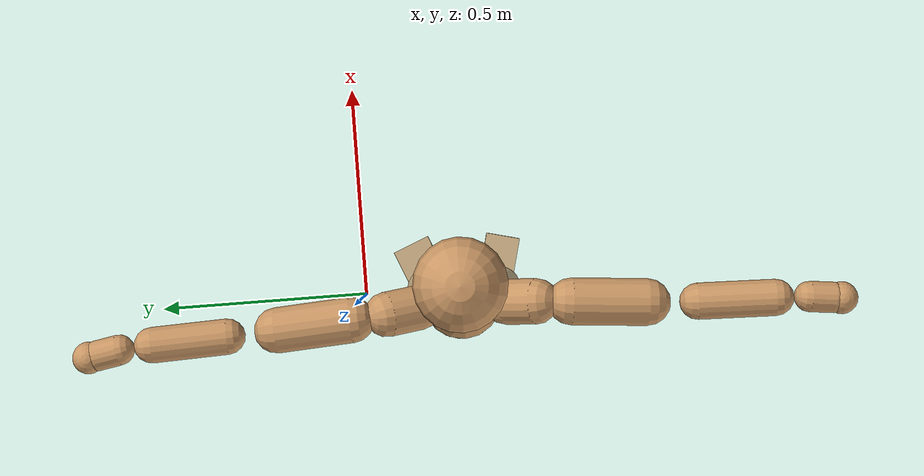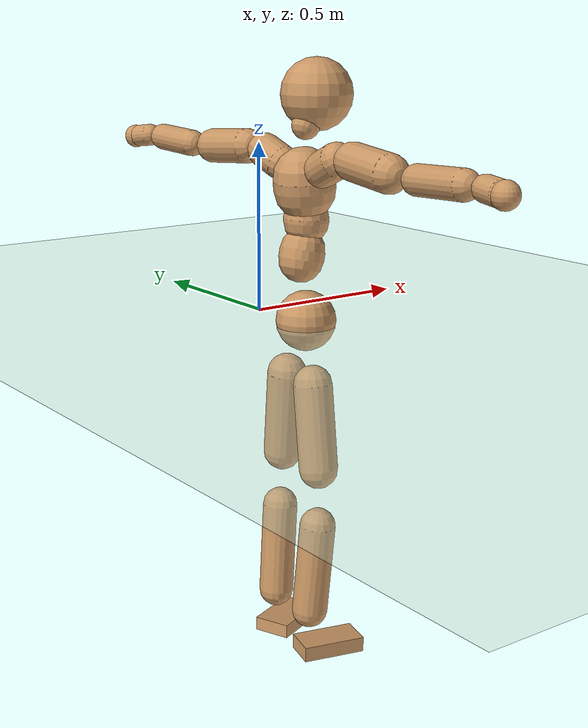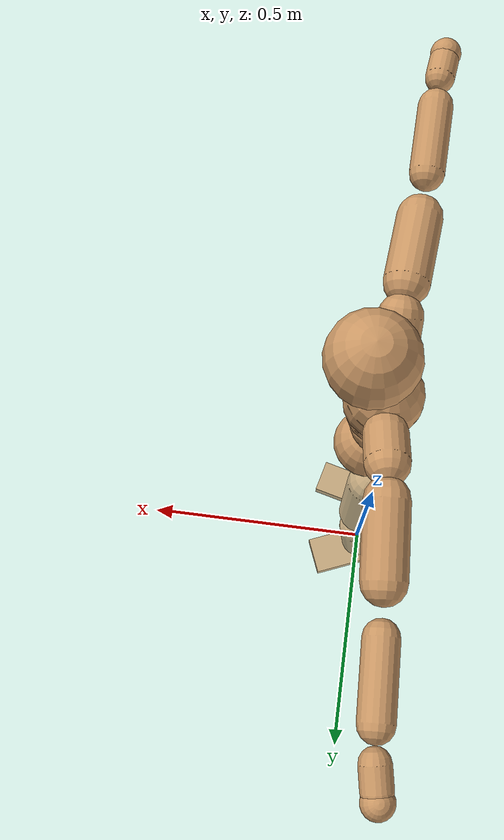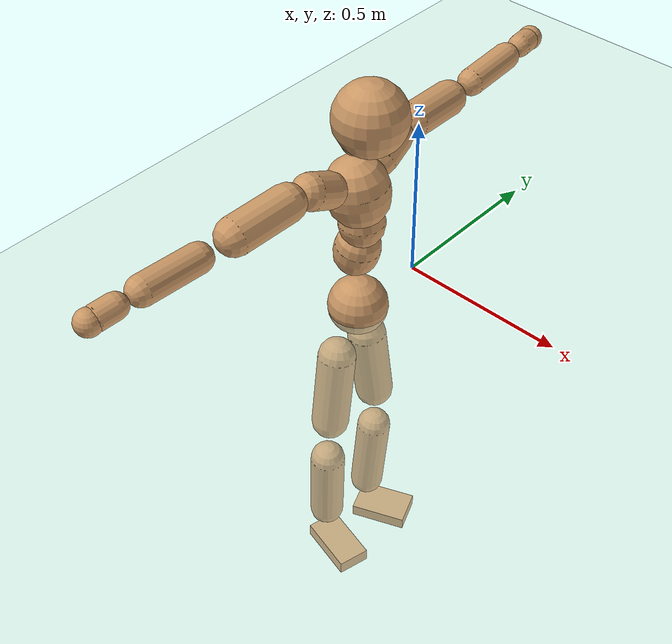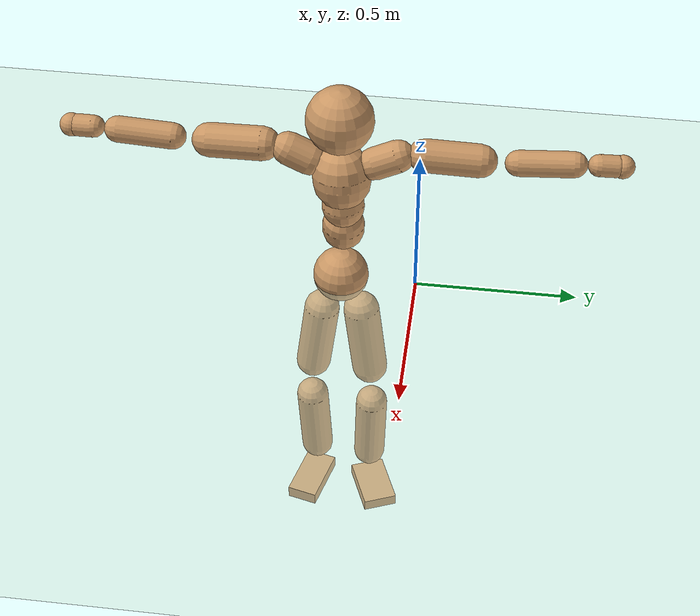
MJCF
<mujoco model="humanoid">
  <compiler coordinate="local"/>
  <default>
    <joint damping="0.0" armature="0.01" stiffness="0.0" limited="true"/>
    <geom conaffinity="1" condim="3" contype="7" margin="0.001" rgba="0.8 0.6 .4 1"/>
  </default>
  <asset>
    <texture type="skybox" builtin="gradient" rgb1=".4 .5 .6" rgb2="0 0 0" width="100" height="100"/>
    <texture builtin="flat" height="1278" mark="cross" markrgb="1 1 1" name="texgeom" random="0.01" rgb1="0.8 0.6 0.4" rgb2="0.8 0.6 0.4" type="cube" width="127"/>
    <texture builtin="checker" height="100" name="texplane" rgb1="0 0 0" rgb2="0.8 0.8 0.8" type="2d" width="100"/>
    <material name="MatPlane" reflectance="0.5" shininess="1" specular="1" texrepeat="60 60" texture="texplane"/>
    <material name="geom" texture="texgeom" texuniform="true"/>
  </asset>
  <worldbody>
    <light cutoff="100" diffuse="1 1 1" dir="-0 0 -1.3" directional="true" exponent="1" pos="0 0 1.3" specular=".1 .1 .1"/>
    <geom conaffinity="1" condim="3" name="floor" pos="0 0 0" rgba="0.8 0.9 0.8 1" size="100 100 .2" type="plane" material="MatPlane"/>
    <body name="Pelvis" pos="-0.002 -0.2356 0.0128">
      <freejoint name="Pelvis"/>
      <geom type="sphere" contype="1" conaffinity="1" density="500" size="0.0871" pos="0.0000 0.0000 0.0000" name="Pelvis"/>
      <body name="L_Hip" pos="-0.0245 0.0527 -0.082">
        <joint name="L_Hip_x" type="hinge" pos="0 0 0" axis="1 0 0" stiffness="800" damping="80" armature="0.02" range="-180.0000 180.0000"/>
        <joint name="L_Hip_y" type="hinge" pos="0 0 0" axis="0 1 0" stiffness="800" damping="80" armature="0.02" range="-180.0000 180.0000"/>
        <joint name="L_Hip_z" type="hinge" pos="0 0 0" axis="0 0 1" stiffness="800" damping="80" armature="0.02" range="-180.0000 180.0000"/>
        <geom type="capsule" contype="1" conaffinity="1" density="500" fromto="0.0023 0.0103 -0.0840 0.0094 0.0410 -0.3359" size="0.0572" name="L_Hip"/>
        <body name="L_Knee" pos="0.0117 0.0513 -0.4199">
          <joint name="L_Knee_x" type="hinge" pos="0 0 0" axis="1 0 0" stiffness="800" damping="80" armature="0.02" range="-180.0000 180.0000"/>
          <joint name="L_Knee_y" type="hinge" pos="0 0 0" axis="0 1 0" stiffness="800" damping="80" armature="0.02" range="-180.0000 180.0000"/>
          <joint name="L_Knee_z" type="hinge" pos="0 0 0" axis="0 0 1" stiffness="800" damping="80" armature="0.02" range="-180.0000 180.0000"/>
          <geom type="capsule" contype="1" conaffinity="1" density="500" fromto="-0.0068 -0.0026 -0.0905 -0.0273 -0.0104 -0.3620" size="0.0518" name="L_Knee"/>
          <body name="L_Ankle" pos="-0.0342 -0.013 -0.4525">
            <joint name="L_Ankle_x" type="hinge" pos="0 0 0" axis="1 0 0" stiffness="800" damping="80" armature="0.02" range="-180.0000 180.0000"/>
            <joint name="L_Ankle_y" type="hinge" pos="0 0 0" axis="0 1 0" stiffness="800" damping="80" armature="0.02" range="-180.0000 180.0000"/>
            <joint name="L_Ankle_z" type="hinge" pos="0 0 0" axis="0 0 1" stiffness="800" damping="80" armature="0.02" range="-180.0000 180.0000"/>
            <geom type="box" contype="1" conaffinity="1" density="500" pos="0.0620 0.0253 -0.0321" size="0.0876 0.0556 0.0205" quat="0.9813 0.0000 0.0000 0.1925" name="L_Ankle"/>
            <body name="L_Toe" pos="0.124 0.0506 -0.0641">
              <joint name="L_Toe_x" type="hinge" pos="0 0 0" axis="1 0 0" stiffness="500" damping="50" armature="0.02" range="-180.0000 180.0000"/>
              <joint name="L_Toe_y" type="hinge" pos="0 0 0" axis="0 1 0" stiffness="500" damping="50" armature="0.02" range="-180.0000 180.0000"/>
              <joint name="L_Toe_z" type="hinge" pos="0 0 0" axis="0 0 1" stiffness="500" damping="50" armature="0.02" range="-180.0000 180.0000"/>
              <geom type="box" contype="1" conaffinity="1" density="500" pos="0.0000 0.0000 0.0341" size="0.0011 0.0026 0.0011" quat="0.9805 0.0000 0.0000 0.1964" name="L_Toe"/>
            </body>
          </body>
        </body>
      </body>
      <body name="R_Hip" pos="-0.0223 -0.0539 -0.09">
        <joint name="R_Hip_x" type="hinge" pos="0 0 0" axis="1 0 0" stiffness="800" damping="80" armature="0.02" range="-180.0000 180.0000"/>
        <joint name="R_Hip_y" type="hinge" pos="0 0 0" axis="0 1 0" stiffness="800" damping="80" armature="0.02" range="-180.0000 180.0000"/>
        <joint name="R_Hip_z" type="hinge" pos="0 0 0" axis="0 0 1" stiffness="800" damping="80" armature="0.02" range="-180.0000 180.0000"/>
        <geom type="capsule" contype="1" conaffinity="1" density="500" fromto="-0.0004 -0.0102 -0.0825 -0.0015 -0.0409 -0.3302" size="0.0563" name="R_Hip"/>
        <body name="R_Knee" pos="-0.0018 -0.0511 -0.4127">
          <joint name="R_Knee_x" type="hinge" pos="0 0 0" axis="1 0 0" stiffness="800" damping="80" armature="0.02" range="-180.0000 180.0000"/>
          <joint name="R_Knee_y" type="hinge" pos="0 0 0" axis="0 1 0" stiffness="800" damping="80" armature="0.02" range="-180.0000 180.0000"/>
          <joint name="R_Knee_z" type="hinge" pos="0 0 0" axis="0 0 1" stiffness="800" damping="80" armature="0.02" range="-180.0000 180.0000"/>
          <geom type="capsule" contype="1" conaffinity="1" density="500" fromto="-0.0063 0.0038 -0.0891 -0.0251 0.0153 -0.3565" size="0.0524" name="R_Knee"/>
          <body name="R_Ankle" pos="-0.0314 0.0192 -0.4456">
            <joint name="R_Ankle_x" type="hinge" pos="0 0 0" axis="1 0 0" stiffness="800" damping="80" armature="0.02" range="-180.0000 180.0000"/>
            <joint name="R_Ankle_y" type="hinge" pos="0 0 0" axis="0 1 0" stiffness="800" damping="80" armature="0.02" range="-180.0000 180.0000"/>
            <joint name="R_Ankle_z" type="hinge" pos="0 0 0" axis="0 0 1" stiffness="800" damping="80" armature="0.02" range="-180.0000 180.0000"/>
            <geom type="box" contype="1" conaffinity="1" density="500" pos="0.0670 -0.0169 -0.0335" size="0.0937 0.0497 0.0222" quat="0.9924 0.0000 0.0000 -0.1230" name="R_Ankle"/>
            <body name="R_Toe" pos="0.1339 -0.0337 -0.0671">
              <joint name="R_Toe_x" type="hinge" pos="0 0 0" axis="1 0 0" stiffness="500" damping="50" armature="0.02" range="-180.0000 180.0000"/>
              <joint name="R_Toe_y" type="hinge" pos="0 0 0" axis="0 1 0" stiffness="500" damping="50" armature="0.02" range="-180.0000 180.0000"/>
              <joint name="R_Toe_z" type="hinge" pos="0 0 0" axis="0 0 1" stiffness="500" damping="50" armature="0.02" range="-180.0000 180.0000"/>
              <geom type="box" contype="1" conaffinity="1" density="500" pos="0.0000 0.0000 0.0349" size="0.001 0.0024 0.0012" quat="0.9934 0.0000 0.0000 -0.1144" name="R_Toe"/>
            </body>
          </body>
        </body>
      </body>
      <body name="Torso" pos="-0.026 0.0044 0.1208">
        <joint name="Torso_x" type="hinge" pos="0 0 0" axis="1 0 0" stiffness="1000" damping="100" armature="0.02" range="-180.0000 180.0000"/>
        <joint name="Torso_y" type="hinge" pos="0 0 0" axis="0 1 0" stiffness="1000" damping="100" armature="0.02" range="-180.0000 180.0000"/>
        <joint name="Torso_z" type="hinge" pos="0 0 0" axis="0 0 1" stiffness="1000" damping="100" armature="0.02" range="-180.0000 180.0000"/>
        <geom type="capsule" contype="1" conaffinity="1" density="500" fromto="0.0187 0.0027 0.0846 0.0124 0.0018 0.0564" size="0.064821" name="Torso"/>
        <body name="Spine" pos="0.0311 0.0044 0.1411">
          <joint name="Spine_x" type="hinge" pos="0 0 0" axis="1 0 0" stiffness="1000" damping="100" armature="0.02" range="-180.0000 180.0000"/>
          <joint name="Spine_y" type="hinge" pos="0 0 0" axis="0 1 0" stiffness="1000" damping="100" armature="0.02" range="-180.0000 180.0000"/>
          <joint name="Spine_z" type="hinge" pos="0 0 0" axis="0 0 1" stiffness="1000" damping="100" armature="0.02" range="-180.0000 180.0000"/>
          <geom type="capsule" contype="1" conaffinity="1" density="500" fromto="0.0000 -0.0013 0.0343 0.0000 -0.0009 0.0229" size="0.064914" name="Spine"/>
          <body name="Chest" pos="0 -0.0022 0.0572">
            <joint name="Chest_x" type="hinge" pos="0 0 0" axis="1 0 0" stiffness="1000" damping="100" armature="0.02" range="-180.0000 180.0000"/>
            <joint name="Chest_y" type="hinge" pos="0 0 0" axis="0 1 0" stiffness="1000" damping="100" armature="0.02" range="-180.0000 180.0000"/>
            <joint name="Chest_z" type="hinge" pos="0 0 0" axis="0 0 1" stiffness="1000" damping="100" armature="0.02" range="-180.0000 180.0000"/>
            <geom type="capsule" contype="1" conaffinity="1" density="500" fromto="-0.0125 -0.0052 0.0882 -0.0083 -0.0035 0.0588" size="0.088257" name="Chest"/>
            <body name="Neck" pos="-0.0228 -0.014 0.2148">
              <joint name="Neck_x" type="hinge" pos="0 0 0" axis="1 0 0" stiffness="500" damping="50" armature="0.02" range="-180.0000 180.0000"/>
              <joint name="Neck_y" type="hinge" pos="0 0 0" axis="0 1 0" stiffness="500" damping="50" armature="0.02" range="-180.0000 180.0000"/>
              <joint name="Neck_z" type="hinge" pos="0 0 0" axis="0 0 1" stiffness="500" damping="50" armature="0.02" range="-180.0000 180.0000"/>
              <geom type="capsule" contype="1" conaffinity="1" density="500" fromto="0.0107 0.0019 0.0203 0.0429 0.0076 0.0813" size="0.040548" name="Neck"/>
              <body name="Head" pos="0.0536 0.0095 0.1017">
                <joint name="Head_x" type="hinge" pos="0 0 0" axis="1 0 0" stiffness="500" damping="50" armature="0.02" range="-180.0000 180.0000"/>
                <joint name="Head_y" type="hinge" pos="0 0 0" axis="0 1 0" stiffness="500" damping="50" armature="0.02" range="-180.0000 180.0000"/>
                <joint name="Head_z" type="hinge" pos="0 0 0" axis="0 0 1" stiffness="500" damping="50" armature="0.02" range="-180.0000 180.0000"/>
                <geom type="sphere" contype="1" conaffinity="1" density="500" size="0.1016" pos="0.0000 0.0000 0.0000" name="Head"/>
              </body>
            </body>
            <body name="L_Thorax" pos="-0.018 0.0684 0.1136">
              <joint name="L_Thorax_x" type="hinge" pos="0 0 0" axis="1 0 0" stiffness="500" damping="50" armature="0.02" range="-180.0000 180.0000"/>
              <joint name="L_Thorax_y" type="hinge" pos="0 0 0" axis="0 1 0" stiffness="500" damping="50" armature="0.02" range="-180.0000 180.0000"/>
              <joint name="L_Thorax_z" type="hinge" pos="0 0 0" axis="0 0 1" stiffness="500" damping="50" armature="0.02" range="-180.0000 180.0000"/>
              <geom type="capsule" contype="1" conaffinity="1" density="500" fromto="-0.0026 0.0232 0.0097 -0.0106 0.0927 0.0388" size="0.05" name="L_Thorax"/>
              <body name="L_Shoulder" pos="-0.0132 0.1158 0.0486">
                <joint name="L_Shoulder_x" type="hinge" pos="0 0 0" axis="1 0 0" stiffness="500" damping="50" armature="0.02" range="-720.0000 720.0000"/>
                <joint name="L_Shoulder_y" type="hinge" pos="0 0 0" axis="0 1 0" stiffness="500" damping="50" armature="0.02" range="-720.0000 720.0000"/>
                <joint name="L_Shoulder_z" type="hinge" pos="0 0 0" axis="0 0 1" stiffness="500" damping="50" armature="0.02" range="-720.0000 720.0000"/>
                <geom type="capsule" contype="1" conaffinity="1" density="500" fromto="-0.0037 0.0551 -0.0041 -0.0148 0.2206 -0.0163" size="0.0506" name="L_Shoulder"/>
                <body name="L_Elbow" pos="-0.0185 0.2757 -0.0204">
                  <joint name="L_Elbow_x" type="hinge" pos="0 0 0" axis="1 0 0" stiffness="500" damping="50" armature="0.02" range="-720.0000 720.0000"/>
                  <joint name="L_Elbow_y" type="hinge" pos="0 0 0" axis="0 1 0" stiffness="500" damping="50" armature="0.02" range="-720.0000 720.0000"/>
                  <joint name="L_Elbow_z" type="hinge" pos="0 0 0" axis="0 0 1" stiffness="500" damping="50" armature="0.02" range="-720.0000 720.0000"/>
                  <geom type="capsule" contype="1" conaffinity="1" density="500" fromto="-0.0020 0.0551 0.0024 -0.0079 0.2202 0.0094" size="0.0396" name="L_Elbow"/>
                  <body name="L_Wrist" pos="-0.0099 0.2753 0.0118">
                    <joint name="L_Wrist_x" type="hinge" pos="0 0 0" axis="1 0 0" stiffness="300" damping="30" armature="0.02" range="-180.0000 180.0000"/>
                    <joint name="L_Wrist_y" type="hinge" pos="0 0 0" axis="0 1 0" stiffness="300" damping="30" armature="0.02" range="-180.0000 180.0000"/>
                    <joint name="L_Wrist_z" type="hinge" pos="0 0 0" axis="0 0 1" stiffness="300" damping="30" armature="0.02" range="-180.0000 180.0000"/>
                    <geom type="capsule" contype="1" conaffinity="1" density="500" fromto="-0.0032 0.0174 -0.0021 -0.0128 0.0697 -0.0084" size="0.0338" name="L_Wrist"/>
                    <body name="L_Hand" pos="-0.016 0.0872 -0.0105">
                      <joint name="L_Hand_x" type="hinge" pos="0 0 0" axis="1 0 0" stiffness="300" damping="30" armature="0.02" range="-180.0000 180.0000"/>
                      <joint name="L_Hand_y" type="hinge" pos="0 0 0" axis="0 1 0" stiffness="300" damping="30" armature="0.02" range="-180.0000 180.0000"/>
                      <joint name="L_Hand_z" type="hinge" pos="0 0 0" axis="0 0 1" stiffness="300" damping="30" armature="0.02" range="-180.0000 180.0000"/>
                      <geom type="sphere" contype="1" conaffinity="1" density="500" size="0.0356" pos="0.0000 0.0000 0.0000" name="L_Hand"/>
                    </body>
                  </body>
                </body>
              </body>
            </body>
            <body name="R_Thorax" pos="-0.0218 -0.0803 0.1125">
              <joint name="R_Thorax_x" type="hinge" pos="0 0 0" axis="1 0 0" stiffness="500" damping="50" armature="0.02" range="-180.0000 180.0000"/>
              <joint name="R_Thorax_y" type="hinge" pos="0 0 0" axis="0 1 0" stiffness="500" damping="50" armature="0.02" range="-180.0000 180.0000"/>
              <joint name="R_Thorax_z" type="hinge" pos="0 0 0" axis="0 0 1" stiffness="500" damping="50" armature="0.02" range="-180.0000 180.0000"/>
              <geom type="capsule" contype="1" conaffinity="1" density="500" fromto="-0.0007 -0.0216 0.0100 -0.0027 -0.0862 0.0402" size="0.0506" name="R_Thorax"/>
              <body name="R_Shoulder" pos="-0.0034 -0.1078 0.0502">
                <joint name="R_Shoulder_x" type="hinge" pos="0 0 0" axis="1 0 0" stiffness="500" damping="50" armature="0.02" range="-720.0000 720.0000"/>
                <joint name="R_Shoulder_y" type="hinge" pos="0 0 0" axis="0 1 0" stiffness="500" damping="50" armature="0.02" range="-720.0000 720.0000"/>
                <joint name="R_Shoulder_z" type="hinge" pos="0 0 0" axis="0 0 1" stiffness="500" damping="50" armature="0.02" range="-720.0000 720.0000"/>
                <geom type="capsule" contype="1" conaffinity="1" density="500" fromto="-0.0050 -0.0552 -0.0046 -0.0200 -0.2209 -0.0185" size="0.0524" name="R_Shoulder"/>
                <body name="R_Elbow" pos="-0.025 -0.2761 -0.0232">
                  <joint name="R_Elbow_x" type="hinge" pos="0 0 0" axis="1 0 0" stiffness="500" damping="50" armature="0.02" range="-720.0000 720.0000"/>
                  <joint name="R_Elbow_y" type="hinge" pos="0 0 0" axis="0 1 0" stiffness="500" damping="50" armature="0.02" range="-720.0000 720.0000"/>
                  <joint name="R_Elbow_z" type="hinge" pos="0 0 0" axis="0 0 1" stiffness="500" damping="50" armature="0.02" range="-720.0000 720.0000"/>
                  <geom type="capsule" contype="1" conaffinity="1" density="500" fromto="-0.0014 -0.0567 0.0021 -0.0056 -0.2268 0.0084" size="0.0405" name="R_Elbow"/>
                  <body name="R_Wrist" pos="-0.007 -0.2835 0.0105">
                    <joint name="R_Wrist_x" type="hinge" pos="0 0 0" axis="1 0 0" stiffness="300" damping="30" armature="0.02" range="-180.0000 180.0000"/>
                    <joint name="R_Wrist_y" type="hinge" pos="0 0 0" axis="0 1 0" stiffness="300" damping="30" armature="0.02" range="-180.0000 180.0000"/>
                    <joint name="R_Wrist_z" type="hinge" pos="0 0 0" axis="0 0 1" stiffness="300" damping="30" armature="0.02" range="-180.0000 180.0000"/>
                    <geom type="capsule" contype="1" conaffinity="1" density="500" fromto="-0.0021 -0.0178 -0.0017 -0.0084 -0.0712 -0.0067" size="0.0343" name="R_Wrist"/>
                    <body name="R_Hand" pos="-0.0105 -0.089 -0.0084">
                      <joint name="R_Hand_x" type="hinge" pos="0 0 0" axis="1 0 0" stiffness="300" damping="30" armature="0.02" range="-180.0000 180.0000"/>
                      <joint name="R_Hand_y" type="hinge" pos="0 0 0" axis="0 1 0" stiffness="300" damping="30" armature="0.02" range="-180.0000 180.0000"/>
                      <joint name="R_Hand_z" type="hinge" pos="0 0 0" axis="0 0 1" stiffness="300" damping="30" armature="0.02" range="-180.0000 180.0000"/>
                      <geom type="sphere" contype="1" conaffinity="1" density="500" size="0.0360" pos="0.0000 0.0000 0.0000" name="R_Hand"/>
                    </body>
                  </body>
                </body>
              </body>
            </body>
          </body>
        </body>
      </body>
    </body>
  </worldbody>
  <actuator>
    <motor name="L_Hip_x" joint="L_Hip_x" gear="500"/>
    <motor name="L_Hip_y" joint="L_Hip_y" gear="500"/>
    <motor name="L_Hip_z" joint="L_Hip_z" gear="500"/>
    <motor name="L_Knee_x" joint="L_Knee_x" gear="500"/>
    <motor name="L_Knee_y" joint="L_Knee_y" gear="500"/>
    <motor name="L_Knee_z" joint="L_Knee_z" gear="500"/>
    <motor name="L_Ankle_x" joint="L_Ankle_x" gear="500"/>
    <motor name="L_Ankle_y" joint="L_Ankle_y" gear="500"/>
    <motor name="L_Ankle_z" joint="L_Ankle_z" gear="500"/>
    <motor name="L_Toe_x" joint="L_Toe_x" gear="500"/>
    <motor name="L_Toe_y" joint="L_Toe_y" gear="500"/>
    <motor name="L_Toe_z" joint="L_Toe_z" gear="500"/>
    <motor name="R_Hip_x" joint="R_Hip_x" gear="500"/>
    <motor name="R_Hip_y" joint="R_Hip_y" gear="500"/>
    <motor name="R_Hip_z" joint="R_Hip_z" gear="500"/>
    <motor name="R_Knee_x" joint="R_Knee_x" gear="500"/>
    <motor name="R_Knee_y" joint="R_Knee_y" gear="500"/>
    <motor name="R_Knee_z" joint="R_Knee_z" gear="500"/>
    <motor name="R_Ankle_x" joint="R_Ankle_x" gear="500"/>
    <motor name="R_Ankle_y" joint="R_Ankle_y" gear="500"/>
    <motor name="R_Ankle_z" joint="R_Ankle_z" gear="500"/>
    <motor name="R_Toe_x" joint="R_Toe_x" gear="500"/>
    <motor name="R_Toe_y" joint="R_Toe_y" gear="500"/>
    <motor name="R_Toe_z" joint="R_Toe_z" gear="500"/>
    <motor name="Torso_x" joint="Torso_x" gear="500"/>
    <motor name="Torso_y" joint="Torso_y" gear="500"/>
    <motor name="Torso_z" joint="Torso_z" gear="500"/>
    <motor name="Spine_x" joint="Spine_x" gear="500"/>
    <motor name="Spine_y" joint="Spine_y" gear="500"/>
    <motor name="Spine_z" joint="Spine_z" gear="500"/>
    <motor name="Chest_x" joint="Chest_x" gear="500"/>
    <motor name="Chest_y" joint="Chest_y" gear="500"/>
    <motor name="Chest_z" joint="Chest_z" gear="500"/>
    <motor name="Neck_x" joint="Neck_x" gear="500"/>
    <motor name="Neck_y" joint="Neck_y" gear="500"/>
    <motor name="Neck_z" joint="Neck_z" gear="500"/>
    <motor name="Head_x" joint="Head_x" gear="500"/>
    <motor name="Head_y" joint="Head_y" gear="500"/>
    <motor name="Head_z" joint="Head_z" gear="500"/>
    <motor name="L_Thorax_x" joint="L_Thorax_x" gear="500"/>
    <motor name="L_Thorax_y" joint="L_Thorax_y" gear="500"/>
    <motor name="L_Thorax_z" joint="L_Thorax_z" gear="500"/>
    <motor name="L_Shoulder_x" joint="L_Shoulder_x" gear="500"/>
    <motor name="L_Shoulder_y" joint="L_Shoulder_y" gear="500"/>
    <motor name="L_Shoulder_z" joint="L_Shoulder_z" gear="500"/>
    <motor name="L_Elbow_x" joint="L_Elbow_x" gear="500"/>
    <motor name="L_Elbow_y" joint="L_Elbow_y" gear="500"/>
    <motor name="L_Elbow_z" joint="L_Elbow_z" gear="500"/>
    <motor name="L_Wrist_x" joint="L_Wrist_x" gear="500"/>
    <motor name="L_Wrist_y" joint="L_Wrist_y" gear="500"/>
    <motor name="L_Wrist_z" joint="L_Wrist_z" gear="500"/>
    <motor name="L_Hand_x" joint="L_Hand_x" gear="500"/>
    <motor name="L_Hand_y" joint="L_Hand_y" gear="500"/>
    <motor name="L_Hand_z" joint="L_Hand_z" gear="500"/>
    <motor name="R_Thorax_x" joint="R_Thorax_x" gear="500"/>
    <motor name="R_Thorax_y" joint="R_Thorax_y" gear="500"/>
    <motor name="R_Thorax_z" joint="R_Thorax_z" gear="500"/>
    <motor name="R_Shoulder_x" joint="R_Shoulder_x" gear="500"/>
    <motor name="R_Shoulder_y" joint="R_Shoulder_y" gear="500"/>
    <motor name="R_Shoulder_z" joint="R_Shoulder_z" gear="500"/>
    <motor name="R_Elbow_x" joint="R_Elbow_x" gear="500"/>
    <motor name="R_Elbow_y" joint="R_Elbow_y" gear="500"/>
    <motor name="R_Elbow_z" joint="R_Elbow_z" gear="500"/>
    <motor name="R_Wrist_x" joint="R_Wrist_x" gear="500"/>
    <motor name="R_Wrist_y" joint="R_Wrist_y" gear="500"/>
    <motor name="R_Wrist_z" joint="R_Wrist_z" gear="500"/>
    <motor name="R_Hand_x" joint="R_Hand_x" gear="500"/>
    <motor name="R_Hand_y" joint="R_Hand_y" gear="500"/>
    <motor name="R_Hand_z" joint="R_Hand_z" gear="500"/>
  </actuator>
  <contact>
    <exclude body1="Torso" body2="Chest"/>
    <exclude body1="Head" body2="Chest"/>
    <exclude body1="R_Knee" body2="R_Toe"/>
    <exclude body1="R_Knee" body2="L_Ankle"/>
    <exclude body1="R_Knee" body2="L_Toe"/>
    <exclude body1="L_Knee" body2="L_Toe"/>
    <exclude body1="L_Knee" body2="R_Ankle"/>
    <exclude body1="L_Knee" body2="R_Toe"/>
    <exclude body1="L_Shoulder" body2="Chest"/>
    <exclude body1="R_Shoulder" body2="Chest"/>
  </contact>
  <sensor/>
  <size njmax="700" nconmax="700"/>
</mujoco>
